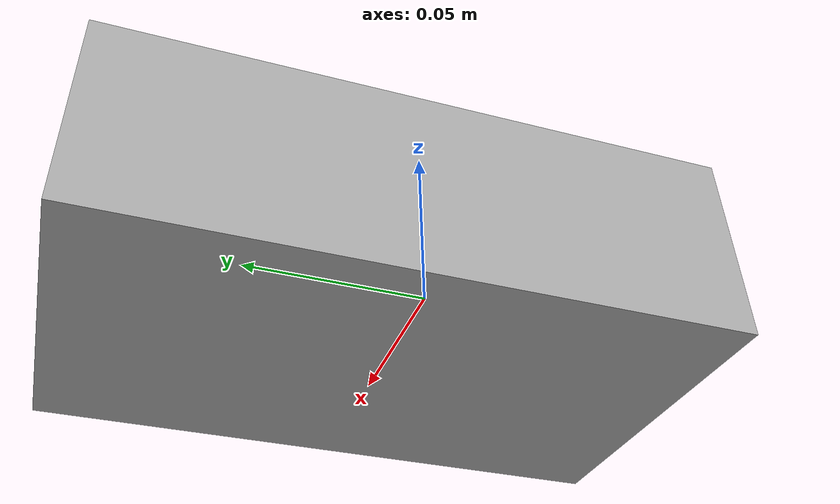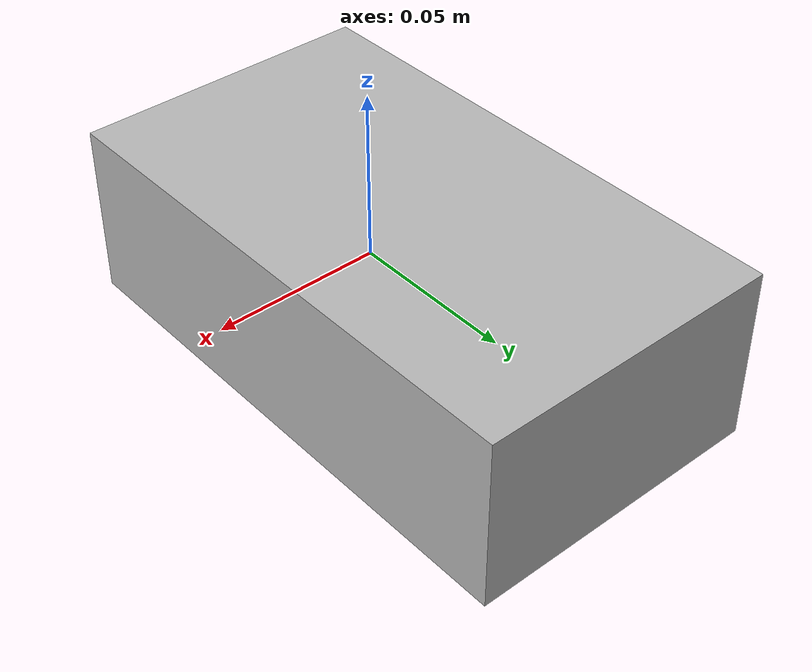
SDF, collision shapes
<?xml version="1.0"?>
<sdf version="1.7">
  <model name="006_mustard_bottle">
    <link name="base_link_mustard">
      <inertial>
        <mass>0.603000</mass>
        <inertia>
          <ixx>0.002009</ixx>
          <ixy>0</ixy>
          <ixz>0</ixz>
          <iyy>0.000633</iyy>
          <iyz>0</iyz>
          <izz>0.002302</izz>
        </inertia>
      </inertial>
      <visual name="base_link_mustard">
        <pose>0.0049 0.092 0.027 1.57 -0.40 0.0</pose>
        <geometry>
          <mesh>
            <uri>package://drake/manipulation/models/ycb/meshes/006_mustard_bottle_textured.obj</uri>
          </mesh>
        </geometry>
      </visual>
      <collision name="box_collision">
        <pose>0 0.015 0 0 0 0</pose>
        <geometry>
          <box>
            <size>0.090000 0.160300 0.052200</size>
          </box>
        </geometry>
        <material>
          <diffuse>0 1 0 1.0</diffuse>
        </material>
      </collision>
      <collision name="point_collision1">
        <pose>0.045500 0.093150 0.026600 0 0 0 </pose>
        <geometry>
          <sphere>
            <radius>1e-7</radius>
          </sphere>
        </geometry>
      </collision>
      <collision name="point_collision2">
        <pose>0.045500 -0.063150 0.026600 0 0 0 </pose>
        <geometry>
          <sphere>
            <radius>1e-7</radius>
          </sphere>
        </geometry>
      </collision>
      <collision name="point_collision3">
        <pose>-0.045500 0.093150 0.026600 0 0 0 </pose>
        <geometry>
          <sphere>
            <radius>1e-7</radius>
          </sphere>
        </geometry>
      </collision>
      <collision name="point_collision4">
        <pose>-0.045500 -0.063150 0.026600 0 0 0 </pose>
        <geometry>
          <sphere>
            <radius>1e-7</radius>
          </sphere>
        </geometry>
      </collision>
      <collision name="point_collision5">
        <pose>0.045500 0.093150 -0.026600 0 0 0 </pose>
        <geometry>
          <sphere>
            <radius>1e-7</radius>
          </sphere>
        </geometry>
      </collision>
      <collision name="point_collision6">
        <pose>0.045500 -0.063150 -0.026600 0 0 0 </pose>
        <geometry>
          <sphere>
            <radius>1e-7</radius>
          </sphere>
        </geometry>
      </collision>
      <collision name="point_collision7">
        <pose>-0.045500 0.093150 -0.026600 0 0 0 </pose>
        <geometry>
          <sphere>
            <radius>1e-7</radius>
          </sphere>
        </geometry>
      </collision>
      <collision name="point_collision8">
        <pose>-0.045500 -0.063150 -0.026600 0 0 0 </pose>
        <geometry>
          <sphere>
            <radius>1e-7</radius>
          </sphere>
        </geometry>
      </collision>
    </link>
  </model>
</sdf>
